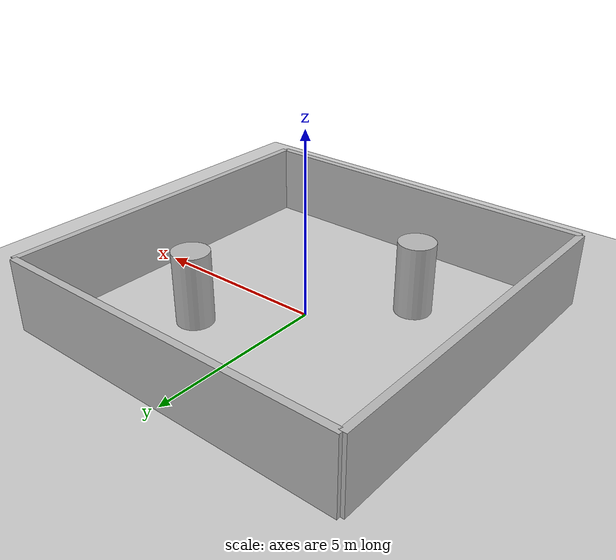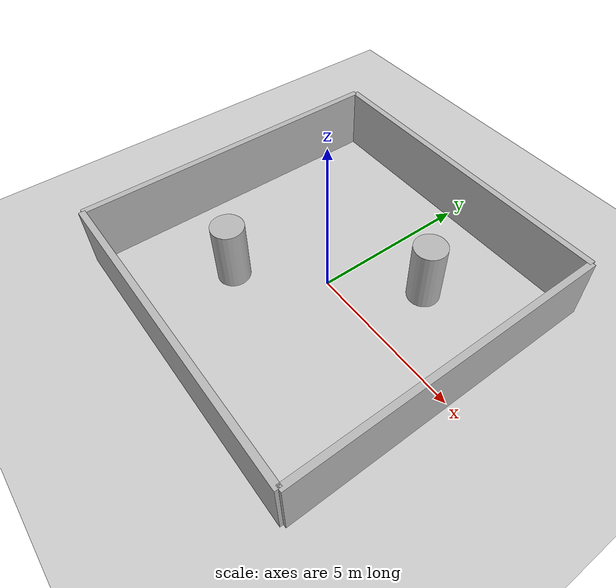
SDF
<?xml version="1.0" ?>
<sdf version="1.5">
  <world name="rescue_world">
    <include><uri>model://sun</uri></include>
    <include><uri>model://ground_plane</uri></include>

    <model name="boundary_walls">
      <static>true</static>
      <link name="link">
        <collision name="wall1"><pose>5 0 1 0 0 0</pose><geometry><box><size>0.2 10 2</size></box></geometry></collision>
        <visual name="v1"><pose>5 0 1 0 0 0</pose><geometry><box><size>0.2 10 2</size></box></geometry></visual>

        <collision name="wall2"><pose>-5 0 1 0 0 0</pose><geometry><box><size>0.2 10 2</size></box></geometry></collision>
        <visual name="v2"><pose>-5 0 1 0 0 0</pose><geometry><box><size>0.2 10 2</size></box></geometry></visual>

        <collision name="wall3"><pose>0 5 1 0 0 0</pose><geometry><box><size>10 0.2 2</size></box></geometry></collision>
        <visual name="v3"><pose>0 5 1 0 0 0</pose><geometry><box><size>10 0.2 2</size></box></geometry></visual>

        <collision name="wall4"><pose>0 -5 1 0 0 0</pose><geometry><box><size>10 0.2 2</size></box></geometry></collision>
        <visual name="v4"><pose>0 -5 1 0 0 0</pose><geometry><box><size>10 0.2 2</size></box></geometry></visual>
      </link>
    </model>

    <model name="obstacle_pillar_1">
      <static>true</static>
      <pose>2 2 1 0 0 0</pose>
      <link name="link">
        <collision name="c1"><geometry><cylinder><radius>0.5</radius><length>2</length></cylinder></geometry></collision>
        <visual name="v1"><geometry><cylinder><radius>0.5</radius><length>2</length></cylinder></geometry></visual>
      </link>
    </model>

    <model name="obstacle_pillar_2">
      <static>true</static>
      <pose>-2 -2 1 0 0 0</pose>
      <link name="link">
        <collision name="c2"><geometry><cylinder><radius>0.5</radius><length>2</length></cylinder></geometry></collision>
        <visual name="v2"><geometry><cylinder><radius>0.5</radius><length>2</length></cylinder></geometry></visual>
      </link>
    </model>
  </world>
</sdf>
